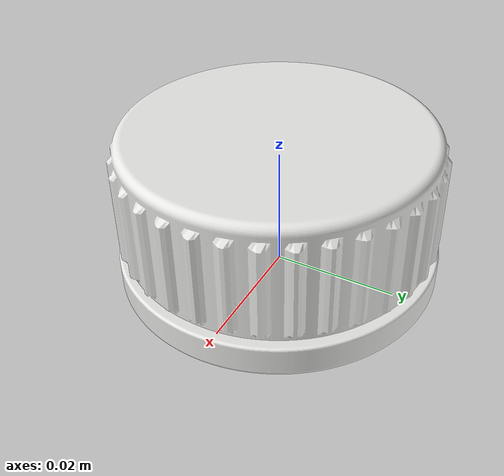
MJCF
<mujoco model="cap_500ml">
  <asset>
    <mesh name="cap_500ml_00" file="cap_500ml_00.obj" inertia="exact"/>
  </asset>
  <worldbody>
    <body name="cap_500ml">
      <geom type="mesh" mesh="cap_500ml_00" rgba="0.920 0.920 0.910 1.000" density="900"/>  <!-- PP_blanco_tapon -->
    </body>
  </worldbody>
</mujoco>
